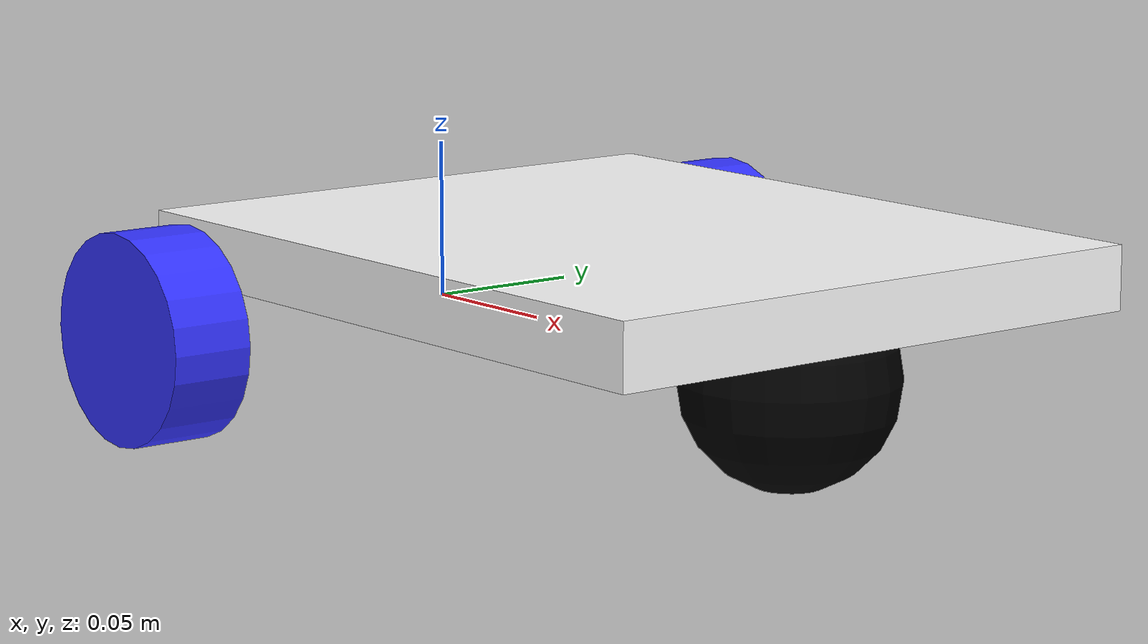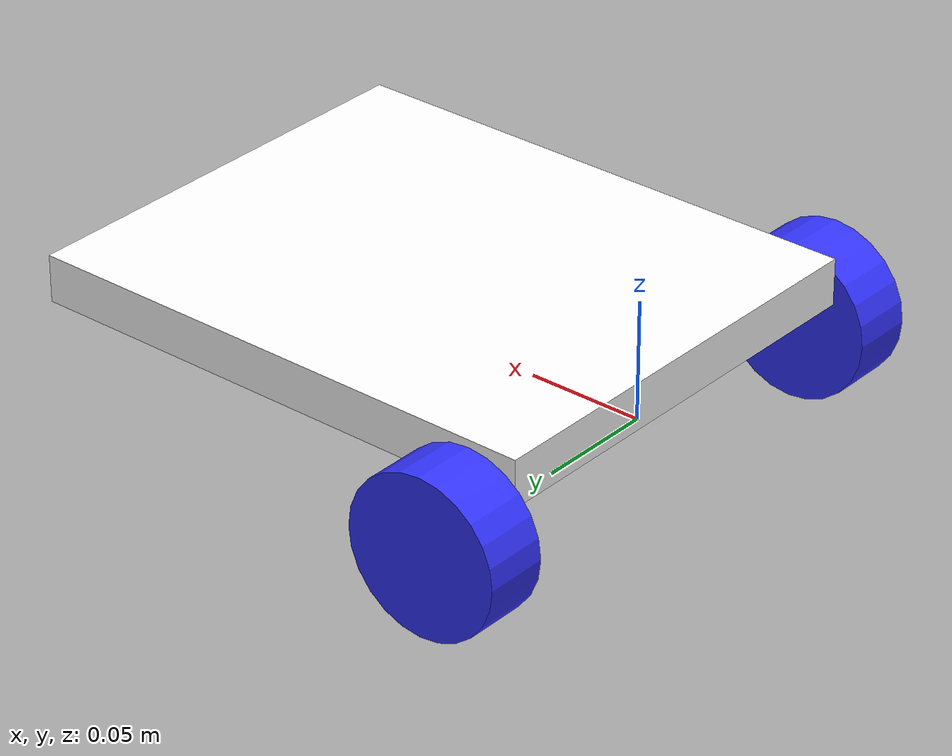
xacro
<?xml version="1.0"?>
<robot xmlns:xacro="http://www.ros.org/wiki/xacro"  name="robot">

    <xacro:arg name="use_ros2_control" default="true"/>
    <xacro:arg name="sim_mode" default="false"/>

    <xacro:include filename="robot_core.xacro" />

    <xacro:if value="$(arg use_ros2_control)">
        <xacro:include filename="ros2_control.xacro" />
    </xacro:if>
    <xacro:unless value="$(arg use_ros2_control)">
        <xacro:include filename="gazebo_control.xacro" />
    </xacro:unless>

</robot>

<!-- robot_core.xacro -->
<robot xmlns:xacro="http://www.ros.org/wiki/xacro" >

    <xacro:include filename="inertial_macros.xacro"/>
    <material name="white">
        <color rgba="1 1 1 1" />
    </material>

    <material name="orange">
        <color rgba="1 0.3 0.1 1" />
    </material>

    <material name="blue">
        <color rgba="0.2 0.2 1 1" />
    </material>

    <material name="black">
        <color rgba="0 0 0 1" />
    </material>

    <!-- base link -->

    <link name="base_link">

    </link>
    <!-- chasis link -->

    <joint name="chassis_joint" type="fixed">
        <parent link="base_link"/>
        <child link="chassis"/>
        <origin xyz="-0.02 0 0"/><!-- desfase de eje de rueda y origen-->
    </joint>

    <link name="chassis">
        <visual>
            <origin xyz="0.115 0 0.025"/> <!-- ubicacion dentro de la caja-->
                <geometry>
                    <box size="0.23 0.19 0.02"/>
                </geometry>
                <material name="white"/>
        </visual>
        <collision>
            <origin xyz="0.115 0 0.025"/>
                <geometry>
                    <box size="0.23 0.19 0.01"/>
                </geometry>

        </collision>
        <xacro:inertial_box mass="1.355" x="0.23" y="0.19" z="0.01">
            <origin xyz="0.115 0 0.025" rpy="0 0 0"/>
        </xacro:inertial_box>

    </link>
    <gazebo reference="chassis">
        <material>Gazebo/White</material>
    </gazebo>
    <!-- LEFT WHEEL LINK -->

    <joint name="left_wheel_joint" type="continuous">
        <parent link="base_link"/>
        <child link="left_wheel"/>
        <origin xyz="0 -0.11 0" rpy="${pi/2} 0 0"/>
        <axis xyz="0 0 1"/>
    </joint>

    <link name="left_wheel">
        <visual>
            <geometry>
                <cylinder radius="0.03325" length="0.0266"/>
            </geometry>
            <material name="blue"/>
        </visual>
        <collision>
            <geometry>
                <cylinder radius="0.03325" length="0.0266"/>
            </geometry>

        </collision>
        <xacro:inertial_cylinder mass="0.03" radius="0.03325" length="0.0266">
            <origin xyz="0 0 0" rpy="0 0 0"/>
        </xacro:inertial_cylinder>
    </link>
    <gazebo reference="left_wheel">
        <material>Gazebo/Blue</material>
    </gazebo>

   <!-- RIGHT WHEEL LINK -->

   <joint name="right_wheel_joint" type="continuous">
        <parent link="base_link"/>
        <child link="right_wheel"/>
        <origin xyz="0 0.11 0" rpy="-${pi/2} 0 0"/>
        <axis xyz="0 0 -1"/>
    </joint>

    <link name="right_wheel">
        <visual>
            <geometry>
                <cylinder radius="0.03325" length="0.0266"/>
            </geometry>
            <material name="blue"/>
        </visual>
        <collision>
            <geometry>
                <cylinder radius="0.03325" length="0.0266"/>
            </geometry>

        </collision>
        <xacro:inertial_cylinder mass="0.03" radius="0.03325" length="0.0266">
            <origin xyz="0 0 0" rpy="0 0 0"/>
        </xacro:inertial_cylinder>
    </link>
    <gazebo reference="right_wheel">
        <material>Gazebo/Blue</material>
    </gazebo>
  <!-- CASTER WHEEL LINK -->

    <joint name="caster_wheel_joint" type="fixed">
        <parent link="chassis"/>
        <child link="caster_wheel"/>
        <origin xyz="0.19 0 0"/>
    </joint>

    <link name="caster_wheel">
        <visual>
            <geometry>
                <sphere radius="0.03325"/>
            </geometry>
            <material name="black"/>
        </visual>
        <collision>
            <geometry>
                <sphere radius="0.03325"/>
            </geometry>

        </collision>
        <xacro:inertial_sphere mass="0.03" radius="0.03325">
            <origin xyz="0 0 0" rpy="0 0 0"/>
        </xacro:inertial_sphere>
    </link>
    <gazebo reference="caster_wheel">
        <material>Gazebo/Black</material>
        <mu1 value="0.001"/>
        <mu2 value="0.001"/>
    </gazebo>

</robot>
